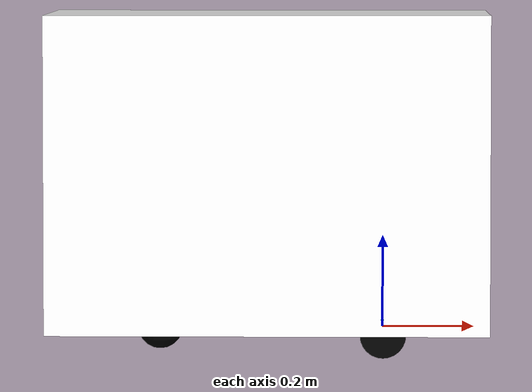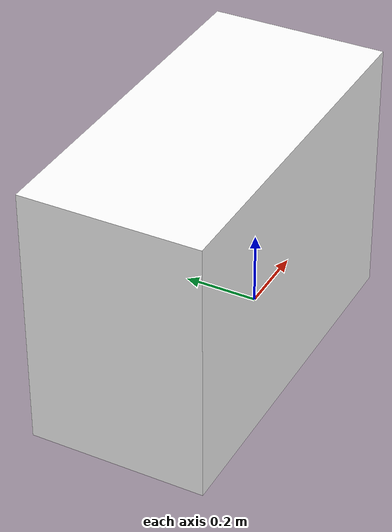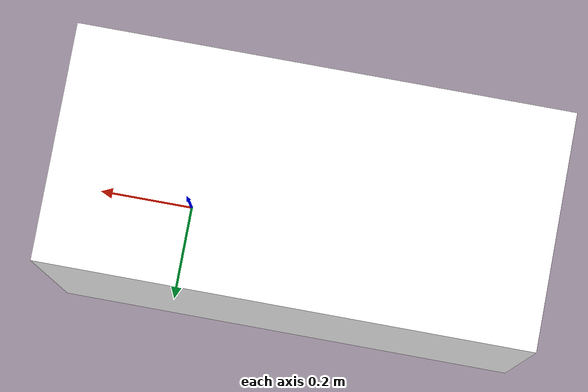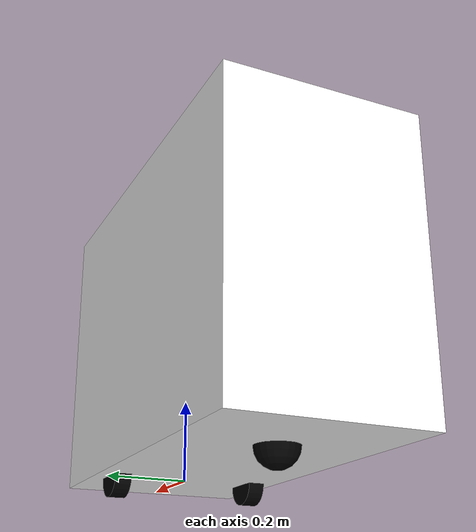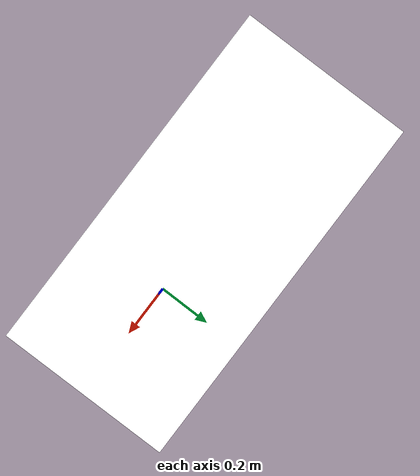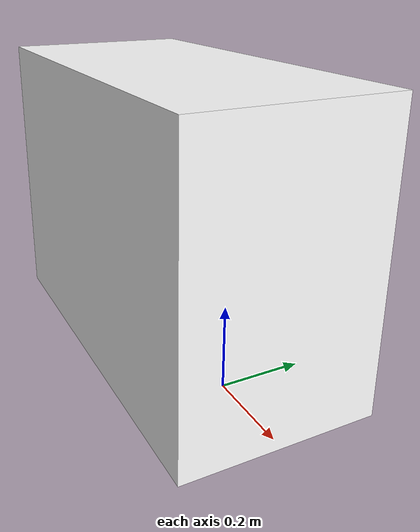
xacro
<?xml version="1.0"?>
<robot xmlns:xacro="http://www.ros.org/wiki/xacro" >

    <xacro:include filename="inertial_macros.xacro"/>

    <material name="white">
        <color rgba="1 1 1 1 "/>
    </material >
    <material name="black">
        <color rgba="0 0 0 1 "/>
    </material >

    <!-- BASE_LINK -->
    <link name="base_link">
    </link>

    <!-- BASE_FOOTPRINT LINK -->
    <joint name="base_footprint_joint" type="fixed">
        <parent link="base_link"/>
        <child link="base_footprint"/>
        <origin xyz="0.0 0.0 0.0" rpy="0 0 0"/>
    </joint>
    <link name="base_footprint">
    </link>

    <!-- CHASSIS_LINK -->
    <joint name="chassis_join" type="fixed">
        <parent link="base_link"/>
        <child link="chassis"/>
        <origin xyz="-0.73 0.0 0.0"/>
    </joint>

    <link name="chassis">
        <visual>
            <origin xyz="0.48 0.0 0.345"/>
            <geometry>
                <box size="0.96 0.46 0.69"/>
            </geometry>
            <material name="white"/>
        </visual>
        <collision>
            <origin xyz="0.48 0.0 0.345"/>
            <geometry>
                <box size="0.96 0.46 0.69"/>
            </geometry>
        </collision>
        <xacro:inertial_box mass="0.5" x="0.96" y="0.46" z="0.69">
            <origin xyz="0.48 0.0 0.345" rpy="0 0 0"/>
        </xacro:inertial_box>
    </link>

    <gazebo reference="chassis">
        <material>Gazebo/White</material>
    </gazebo>

    <!-- LEFT_WHEEL_LINK -->
    <joint name="left_wheel_joint" type="continuous">
        <parent link="base_link"/>
        <child link="left_wheel"/>
        <origin xyz="0.0 0.175 0.0" rpy="-${pi/2} 0 0"/>
        <axis xyz="0 0 1"/>
    </joint>
    <link name="left_wheel">
        <visual>
            <origin xyz="0.0 0.0 0.0" rpy="0.0 0.0 0.0"/>
            <geometry>
                <cylinder radius="0.05" length="0.04"/>
            </geometry>
            <material name="black"/>
        </visual>
        <collision>
            <origin xyz="0.0 0.0 0.0" rpy="0.0 0.0 0.0"/>
            <geometry>
                <sphere radius="0.05" />
            </geometry>
        </collision>
        <xacro:inertial_cylinder mass="0.2" length="0.04" radius="0.05">
            <origin xyz="0 0 0" rpy="0 0 0"/>
        </xacro:inertial_cylinder>
    </link>

    <gazebo reference="left_wheel">
        <material>Gazebo/Black</material>
    </gazebo>

    <!-- RIGHT_WHEEL_LINK -->
    <joint name="right_wheel_joint" type="continuous">
        <parent link="base_link"/>
        <child link="right_wheel"/>
        <origin xyz="0.0 -0.175 0.0" rpy="${pi/2} 0 0"/>
        <axis xyz="0 0 -1"/>
    </joint>
    <link name="right_wheel">
        <visual>
            <origin xyz="0.0 0.0 0.0" rpy="0.0 0.0 0.0"/>
            <geometry>
                <cylinder radius="0.05" length="0.04"/>
            </geometry>
            <material name="black"/>
        </visual>
        <collision>
            <origin xyz="0.0 0.0 0.0" rpy="0.0 0.0 0.0"/>
            <geometry>
                <sphere radius="0.05" />
            </geometry>
        </collision>
        <xacro:inertial_cylinder mass="0.2" length="0.04" radius="0.05">
            <origin xyz="0 0 0" rpy="0 0 0"/>
        </xacro:inertial_cylinder>
    </link>

    <gazebo reference="right_wheel">
        <material>Gazebo/Black</material>
    </gazebo>

    <!-- CASTER_WHEEL_LINK -->
    <joint name="caster_wheel_joint" type="fixed">
        <parent link="chassis"/>
        <child link="caster_wheel"/>
        <origin xyz="0.24 0.0 0.0"/>
    </joint>
    <link name="caster_wheel">
        <visual>
            <geometry>
                <sphere radius="0.05"/>
            </geometry>
            <material name="black"/>
        </visual>
        <collision>
            <geometry>
                <sphere radius="0.05"/>
            </geometry>
        </collision>
        <xacro:inertial_sphere mass="0.2" radius="0.05">
            <origin xyz="0 0 0" rpy="0 0 0"/>
        </xacro:inertial_sphere>
    </link>

    <gazebo reference="caster_wheel">
        <material>Gazebo/Black</material>
        <mu1 value="0.001"/>
        <mu2 value="0.001"/>
    </gazebo>
</robot>
